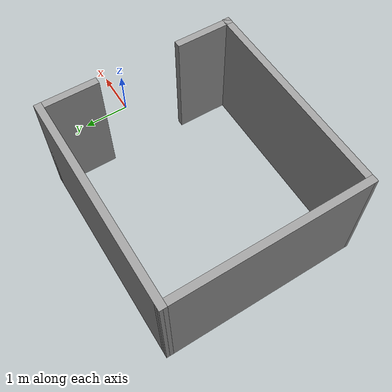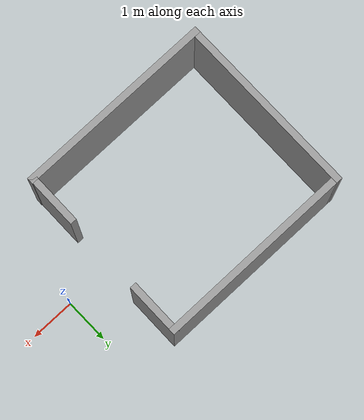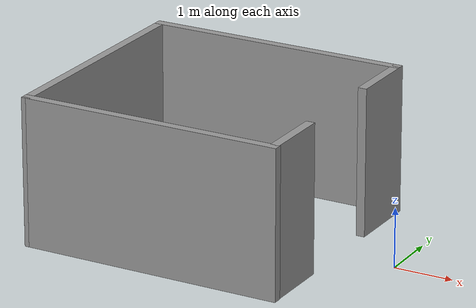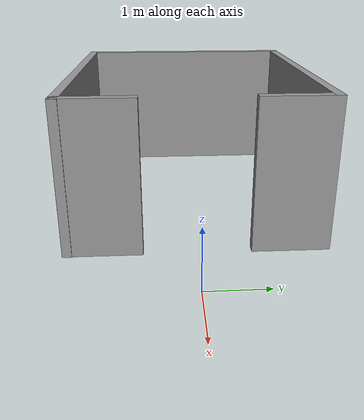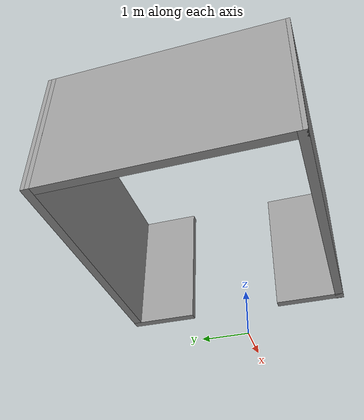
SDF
<?xml version='1.0'?>
<sdf version='1.7'>
  <model name='Test_building00'>
    <pose>-2.73597 0.016727 0 0 -0 0</pose>
    <link name='Wall_10'>
      <collision name='Wall_10_Collision'>
        <geometry>
          <box>
            <size>0.16 0.15 2.5</size>
          </box>
        </geometry>
        <pose>0 0 1.25 0 -0 0</pose>
      </collision>
      <visual name='Wall_10_Visual'>
        <pose>0 0 1.25 0 -0 0</pose>
        <geometry>
          <box>
            <size>0.16 0.15 2.5</size>
          </box>
        </geometry>
        <material>
          <script>
            <uri>file://media/materials/scripts/gazebo.material</uri>
            <name>Gazebo/Grey</name>
          </script>
          <ambient>1 1 1 1</ambient>
        </material>
        <meta>
          <layer>0</layer>
        </meta>
      </visual>
      <pose>1.69422 -2.025 0 0 -0 0</pose>
    </link>
    <link name='Wall_11'>
      <collision name='Wall_11_Collision'>
        <geometry>
          <box>
            <size>4.5 0.15 2.5</size>
          </box>
        </geometry>
        <pose>0 0 1.25 0 -0 0</pose>
      </collision>
      <visual name='Wall_11_Visual'>
        <pose>0 0 1.25 0 -0 0</pose>
        <geometry>
          <box>
            <size>4.5 0.15 2.5</size>
          </box>
        </geometry>
        <material>
          <script>
            <uri>file://media/materials/scripts/gazebo.material</uri>
            <name>Gazebo/Grey</name>
          </script>
          <ambient>1 1 1 1</ambient>
        </material>
        <meta>
          <layer>0</layer>
        </meta>
      </visual>
      <pose>-0.475782 -2.025 0 0 -0 3.14159</pose>
    </link>
    <link name='Wall_12'>
      <collision name='Wall_12_Collision'>
        <geometry>
          <box>
            <size>4.20001 0.15 2.5</size>
          </box>
        </geometry>
        <pose>0 0 1.25 0 -0 0</pose>
      </collision>
      <visual name='Wall_12_Visual'>
        <pose>0 0 1.25 0 -0 0</pose>
        <geometry>
          <box>
            <size>4.20001 0.15 2.5</size>
          </box>
        </geometry>
        <material>
          <script>
            <uri>file://media/materials/scripts/gazebo.material</uri>
            <name>Gazebo/Grey</name>
          </script>
          <ambient>1 1 1 1</ambient>
        </material>
        <meta>
          <layer>0</layer>
        </meta>
      </visual>
      <pose>-2.65578 -0 0 0 -0 1.57326</pose>
    </link>
    <link name='Wall_5'>
      <collision name='Wall_5_Collision'>
        <geometry>
          <box>
            <size>4.5 0.15 2.5</size>
          </box>
        </geometry>
        <pose>0 0 1.25 0 -0 0</pose>
      </collision>
      <visual name='Wall_5_Visual'>
        <pose>0 0 1.25 0 -0 0</pose>
        <geometry>
          <box>
            <size>4.5 0.15 2.5</size>
          </box>
        </geometry>
        <material>
          <script>
            <uri>file://media/materials/scripts/gazebo.material</uri>
            <name>Gazebo/Grey</name>
          </script>
          <ambient>1 1 1 1</ambient>
        </material>
        <meta>
          <layer>0</layer>
        </meta>
      </visual>
      <pose>-0.485782 2.025 0 0 -0 0</pose>
    </link>
    <link name='Wall_6'>
      <collision name='Wall_6_Collision'>
        <geometry>
          <box>
            <size>1.25 0.15 2.5</size>
          </box>
        </geometry>
        <pose>0 0 1.25 0 -0 0</pose>
      </collision>
      <visual name='Wall_6_Visual'>
        <pose>0 0 1.25 0 -0 0</pose>
        <geometry>
          <box>
            <size>1.25 0.15 2.5</size>
          </box>
        </geometry>
        <material>
          <script>
            <uri>file://media/materials/scripts/gazebo.material</uri>
            <name>Gazebo/Grey</name>
          </script>
          <ambient>1 1 1 1</ambient>
        </material>
        <meta>
          <layer>0</layer>
        </meta>
      </visual>
      <pose>1.68922 1.475 0 0 -0 -1.5708</pose>
    </link>
    <link name='Wall_9'>
      <collision name='Wall_9_Collision'>
        <geometry>
          <box>
            <size>1.25 0.15 2.5</size>
          </box>
        </geometry>
        <pose>0 0 1.25 0 -0 0</pose>
      </collision>
      <visual name='Wall_9_Visual'>
        <pose>0 0 1.25 0 -0 0</pose>
        <geometry>
          <box>
            <size>1.25 0.15 2.5</size>
          </box>
        </geometry>
        <material>
          <script>
            <uri>file://media/materials/scripts/gazebo.material</uri>
            <name>Gazebo/Grey</name>
          </script>
          <ambient>1 1 1 1</ambient>
        </material>
        <meta>
          <layer>0</layer>
        </meta>
      </visual>
      <pose>1.68922 -1.475 0 0 -0 -1.5708</pose>
    </link>
    <static>1</static>
  </model>
</sdf>
